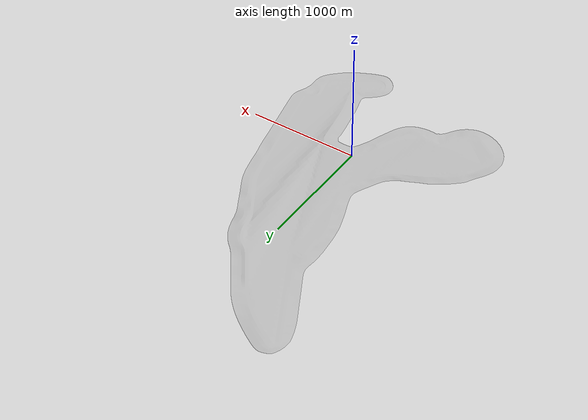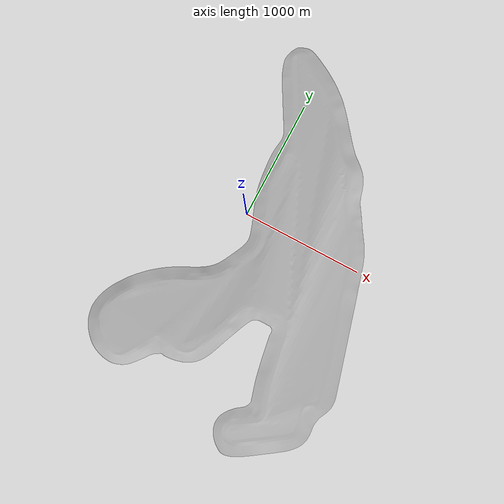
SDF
<sdf version='1.10'>
  <world name='spa'>
    <physics name='1ms' type='ignored'>
      <max_step_size>0.001</max_step_size>
      <real_time_factor>1</real_time_factor>
      <real_time_update_rate>1000</real_time_update_rate>
    </physics>
    <plugin name='gz::sim::systems::Physics' filename='gz-sim-physics-system'/>
    <plugin name='gz::sim::systems::UserCommands' filename='gz-sim-user-commands-system'/>
    <plugin name='gz::sim::systems::SceneBroadcaster' filename='gz-sim-scene-broadcaster-system'/>
    <plugin name='gz::sim::systems::Contact' filename='gz-sim-contact-system'/>
    <gravity>0 0 -9.8</gravity>
    <atmosphere type='adiabatic'/>
    <scene>
      <ambient>0.4 0.4 0.4 1</ambient>
      <background>0.7 0.7 0.7 1</background>
      <shadows>true</shadows>
      <grid>false</grid>
      <sky>
        <clouds>
          <speed>12</speed>
        </clouds>
      </sky>
    </scene>

    <include>
      <uri>model://spa</uri>
      <name>spa</name>
      <pose>0 0 -1000 0 0 0</pose>
    </include>

    <light name='my_sun' type='directional'>
      <pose>0 0 10 0 0 0</pose>
      <cast_shadows>true</cast_shadows>
      <intensity>1</intensity>
      <direction>-0.5 0.1 -0.9</direction>
      <diffuse>0.8 0.8 0.8 1</diffuse>
      <specular>0.2 0.2 0.2 1</specular>
      <attenuation>
        <range>1000</range>
        <linear>0.01</linear>
        <constant>0.9</constant>
        <quadratic>0.001</quadratic>
      </attenuation>
      <spot>
        <inner_angle>0</inner_angle>
        <outer_angle>0</outer_angle>
        <falloff>0</falloff>
      </spot>
    </light>
  </world>
</sdf>

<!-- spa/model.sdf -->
<sdf version="1.7">

    <model name="spa_circuit">
      <static>true</static>
      <link name="link">
        <visual name="visual">
          <geometry>
            <mesh>
              <uri>model://spa/meshes/spa.dae</uri>
            </mesh>
          </geometry>
        </visual>
        <collision name="collision">
          <geometry>
            <mesh>
              <uri>model://spa/meshes/spa.dae</uri>
            </mesh>
          </geometry>
        </collision>
      </link>
    </model>
</sdf>
